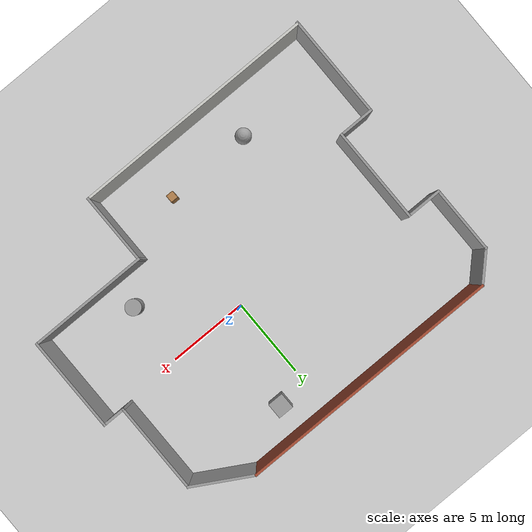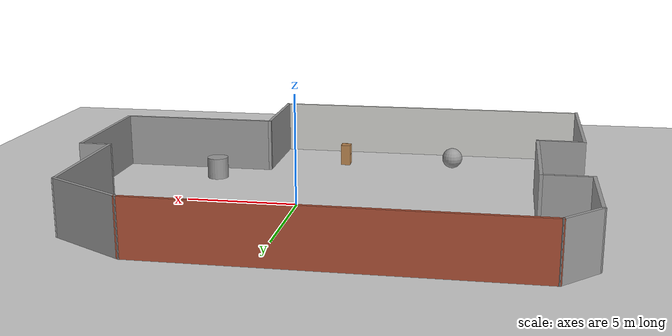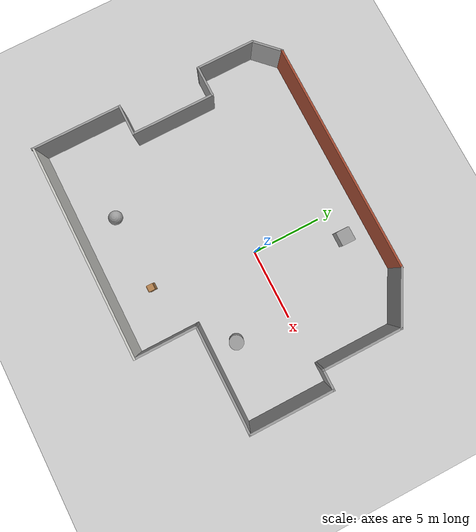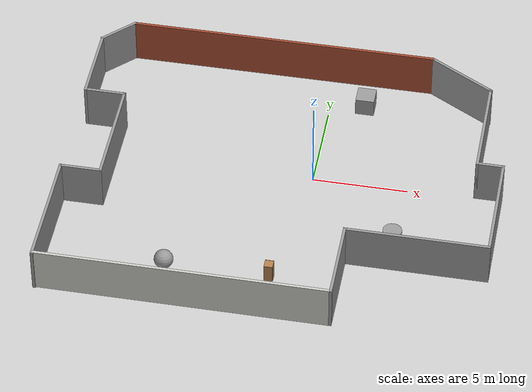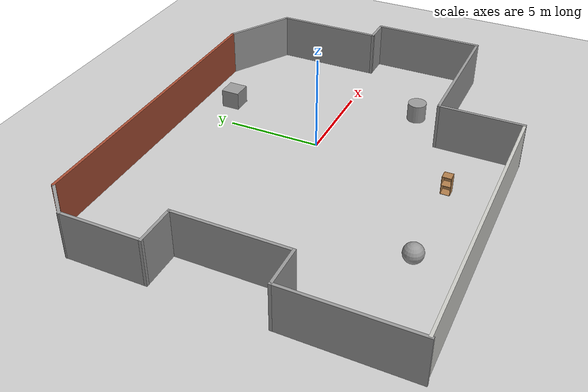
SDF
<sdf version="1.7">
 <world name="default">
  <light name="sun" type="directional">
   <pose>0 0 10 0 -0 0</pose>
   <diffuse>0.8 0.8 0.8 1</diffuse>
   <specular>0.2 0.2 0.2 1</specular>
   <attenuation>
    <range>1000</range>
    <constant>0.9</constant>
    <linear>0.01</linear>
    <quadratic>0.001</quadratic>
   </attenuation>
   <direction>-0.5 0.1 -0.9</direction>
   <spot><inner_angle>0</inner_angle><outer_angle>0</outer_angle><falloff>0</falloff></spot>
  </light>
  <model name="ground_plane">
   <static>1</static>
   <link name="link">
    <collision name="collision">
     <geometry><plane><normal>0 0 1</normal><size>100 100</size></plane></geometry>
     <surface>
      <contact><collide_bitmask>65535</collide_bitmask></contact>
      <friction><ode><mu>100</mu><mu2>50</mu2></ode></friction>
     </surface>
    </collision>
    <visual name="visual">
     <cast_shadows>0</cast_shadows>
     <geometry><plane><normal>0 0 1</normal><size>100 100</size></plane></geometry>
     <material>
      <script><uri>file://media/materials/scripts/gazebo.material</uri><name>Gazebo/Grey</name></script>
     </material>
    </visual>
   </link>
  </model>
  <gravity>0 0 -9.8</gravity>
  <magnetic_field>6e-06 2.3e-05 -4.2e-05</magnetic_field>
  <atmosphere type="adiabatic"/>
  <physics type="ode">
   <max_step_size>0.001</max_step_size>
   <real_time_factor>1</real_time_factor>
   <real_time_update_rate>1000</real_time_update_rate>
  </physics>
  <scene><ambient>0.4 0.4 0.4 1</ambient><background>0.7 0.7 0.7 1</background><shadows>1</shadows></scene>
  <spherical_coordinates>
   <surface_model>EARTH_WGS84</surface_model>
   <latitude_deg>0</latitude_deg>
   <longitude_deg>0</longitude_deg>
   <elevation>0</elevation>
   <heading_deg>0</heading_deg>
  </spherical_coordinates>
  <model name="new_world">
   <pose>-1.38713 -1.14003 0 0 -0 0</pose>
   <link name="Wall_20">
    <collision name="Wall_20_Collision">
     <geometry><box><size>6 0.15 2.5</size></box></geometry>
     <pose>0 0 1.25 0 -0 0</pose>
    </collision>
    <visual name="Wall_20_Visual">
     <pose>0 0 1.25 0 -0 0</pose>
     <geometry><box><size>6 0.15 2.5</size></box></geometry>
     <material>
      <script><uri>file://media/materials/scripts/gazebo.material</uri><name>Gazebo/Grey</name></script>
      <ambient>1 1 1 1</ambient>
     </material>
     <meta><layer>0</layer></meta>
    </visual>
    <pose>-9.14408 0.367002 0 0 -0 1.5708</pose>
   </link>
   <link name="Wall_21">
    <collision name="Wall_21_Collision">
     <geometry><box><size>2.25 0.15 2.5</size></box></geometry>
     <pose>0 0 1.25 0 -0 0</pose>
    </collision>
    <visual name="Wall_21_Visual">
     <pose>0 0 1.25 0 -0 0</pose>
     <geometry><box><size>2.25 0.15 2.5</size></box></geometry>
     <material>
      <script><uri>file://media/materials/scripts/gazebo.material</uri><name>Gazebo/Grey</name></script>
      <ambient>1 1 1 1</ambient>
     </material>
     <meta><layer>0</layer></meta>
    </visual>
    <pose>-10.1941 3.292 0 0 -0 3.14159</pose>
   </link>
   <link name="Wall_22">
    <collision name="Wall_22_Collision">
     <geometry><box><size>4.25 0.15 2.5</size></box></geometry>
     <pose>0 0 1.25 0 -0 0</pose>
    </collision>
    <visual name="Wall_22_Visual">
     <pose>0 0 1.25 0 -0 0</pose>
     <geometry><box><size>4.25 0.15 2.5</size></box></geometry>
     <material>
      <script><uri>file://media/materials/scripts/gazebo.material</uri><name>Gazebo/Grey</name></script>
      <ambient>1 1 1 1</ambient>
     </material>
     <meta><layer>0</layer></meta>
    </visual>
    <pose>-11.2441 5.342 0 0 -0 1.5708</pose>
   </link>
   <link name="Wall_23">
    <collision name="Wall_23_Collision">
     <geometry><box><size>2.25 0.15 2.5</size></box></geometry>
     <pose>0 0 1.25 0 -0 0</pose>
    </collision>
    <visual name="Wall_23_Visual">
     <pose>0 0 1.25 0 -0 0</pose>
     <geometry><box><size>2.25 0.15 2.5</size></box></geometry>
     <material>
      <script><uri>file://media/materials/scripts/gazebo.material</uri><name>Gazebo/Grey</name></script>
      <ambient>1 1 1 1</ambient>
     </material>
     <meta><layer>0</layer></meta>
    </visual>
    <pose>-10.5015 8.13452 0 0 -0 0.785338</pose>
   </link>
   <link name="Wall_24">
    <collision name="Wall_24_Collision">
     <geometry><box><size>16.5 0.15 2.5</size></box></geometry>
     <pose>0 0 1.25 0 -0 0</pose>
    </collision>
    <visual name="Wall_24_Visual">
     <pose>0 0 1.25 0 -0 0</pose>
     <geometry><box><size>16.5 0.15 2.5</size></box></geometry>
     <material>
      <script><uri>file://media/materials/scripts/gazebo.material</uri><name>Gazebo/Bricks</name></script>
      <ambient>1 1 1 1</ambient>
     </material>
     <meta><layer>0</layer></meta>
    </visual>
    <pose>-1.58387 8.87703 0 0 -0 0</pose>
   </link>
   <link name="Wall_25">
    <collision name="Wall_25_Collision">
     <geometry><box><size>4 0.15 2.5</size></box></geometry>
     <pose>0 0 1.25 0 -0 0</pose>
    </collision>
    <visual name="Wall_25_Visual">
     <pose>0 0 1.25 0 -0 0</pose>
     <geometry><box><size>4 0.15 2.5</size></box></geometry>
     <material>
      <script><uri>file://media/materials/scripts/gazebo.material</uri><name>Gazebo/Grey</name></script>
      <ambient>1 1 1 1</ambient>
     </material>
     <meta><layer>0</layer></meta>
    </visual>
    <pose>8.25809 7.91448 0 0 -0 -0.523658</pose>
   </link>
   <link name="Wall_26">
    <collision name="Wall_26_Collision">
     <geometry><box><size>5.75 0.15 2.5</size></box></geometry>
     <pose>0 0 1.25 0 -0 0</pose>
    </collision>
    <visual name="Wall_26_Visual">
     <pose>0 0 1.25 0 -0 0</pose>
     <geometry><box><size>5.75 0.15 2.5</size></box></geometry>
     <material>
      <script><uri>file://media/materials/scripts/gazebo.material</uri><name>Gazebo/Grey</name></script>
      <ambient>1 1 1 1</ambient>
     </material>
     <meta><layer>0</layer></meta>
    </visual>
    <pose>9.92505 4.15193 0 0 -0 -1.5708</pose>
   </link>
   <link name="Wall_27">
    <collision name="Wall_27_Collision">
     <geometry><box><size>1.5 0.15 2.5</size></box></geometry>
     <pose>0 0 1.25 0 -0 0</pose>
    </collision>
    <visual name="Wall_27_Visual">
     <pose>0 0 1.25 0 -0 0</pose>
     <geometry><box><size>1.5 0.15 2.5</size></box></geometry>
     <material>
      <script><uri>file://media/materials/scripts/gazebo.material</uri><name>Gazebo/Grey</name></script>
      <ambient>1 1 1 1</ambient>
     </material>
     <meta><layer>0</layer></meta>
    </visual>
    <pose>10.6 1.35193 0 0 -0 0</pose>
   </link>
   <link name="Wall_28">
    <collision name="Wall_28_Collision">
     <geometry><box><size>6 0.15 2.5</size></box></geometry>
     <pose>0 0 1.25 0 -0 0</pose>
    </collision>
    <visual name="Wall_28_Visual">
     <pose>0 0 1.25 0 -0 0</pose>
     <geometry><box><size>6 0.15 2.5</size></box></geometry>
     <material>
      <script><uri>file://media/materials/scripts/gazebo.material</uri><name>Gazebo/Grey</name></script>
      <ambient>1 1 1 1</ambient>
     </material>
     <meta><layer>0</layer></meta>
    </visual>
    <pose>11.275 -1.57307 0 0 -0 -1.5708</pose>
   </link>
   <link name="Wall_29">
    <collision name="Wall_29_Collision">
     <geometry><box><size>7.5 0.15 2.5</size></box></geometry>
     <pose>0 0 1.25 0 -0 0</pose>
    </collision>
    <visual name="Wall_29_Visual">
     <pose>0 0 1.25 0 -0 0</pose>
     <geometry><box><size>7.5 0.15 2.5</size></box></geometry>
     <material>
      <script><uri>file://media/materials/scripts/gazebo.material</uri><name>Gazebo/Grey</name></script>
      <ambient>1 1 1 1</ambient>
     </material>
     <meta><layer>0</layer></meta>
    </visual>
    <pose>7.60005 -4.49807 0 0 -0 3.14159</pose>
   </link>
   <link name="Wall_30">
    <collision name="Wall_30_Collision">
     <geometry><box><size>4.5 0.15 2.5</size></box></geometry>
     <pose>0 0 1.25 0 -0 0</pose>
    </collision>
    <visual name="Wall_30_Visual">
     <pose>0 0 1.25 0 -0 0</pose>
     <geometry><box><size>4.5 0.15 2.5</size></box></geometry>
     <material>
      <script><uri>file://media/materials/scripts/gazebo.material</uri><name>Gazebo/Grey</name></script>
      <ambient>1 1 1 1</ambient>
     </material>
     <meta><layer>0</layer></meta>
    </visual>
    <pose>3.92509 -6.67302 0 0 -0 -1.57078</pose>
   </link>
   <link name="Wall_31">
    <collision name="Wall_31_Collision">
     <geometry><box><size>15.25 0.15 2.5</size></box></geometry>
     <pose>0 0 1.25 0 -0 0</pose>
    </collision>
    <visual name="Wall_31_Visual">
     <pose>0 0 1.25 0 -0 0</pose>
     <geometry><box><size>15.25 0.15 2.5</size></box></geometry>
     <material>
      <script><uri>file://media/materials/scripts/gazebo.material</uri><name>Gazebo/CeilingTiled</name></script>
      <ambient>0.435294 0.796078 0.67451 1</ambient>
     </material>
     <meta><layer>0</layer></meta>
    </visual>
    <pose>-3.62487 -8.84797 0 0 -0 3.14159</pose>
   </link>
   <link name="Wall_35">
    <collision name="Wall_35_Collision">
     <geometry><box><size>2.25 0.15 2.5</size></box></geometry>
     <pose>0 0 1.25 0 -0 0</pose>
    </collision>
    <visual name="Wall_35_Visual">
     <pose>0 0 1.25 0 -0 0</pose>
     <geometry><box><size>2.25 0.15 2.5</size></box></geometry>
     <material>
      <script><uri>file://media/materials/scripts/gazebo.material</uri><name>Gazebo/Grey</name></script>
      <ambient>1 1 1 1</ambient>
     </material>
     <meta><layer>0</layer></meta>
    </visual>
    <pose>-10.1941 -2.558 0 0 -0 3.14159</pose>
   </link>
   <link name="Wall_38">
    <collision name="Wall_38_Collision">
     <geometry><box><size>6.5 0.15 2.5</size></box></geometry>
     <pose>0 0 1.25 0 -0 0</pose>
    </collision>
    <visual name="Wall_38_Visual">
     <pose>0 0 1.25 0 -0 0</pose>
     <geometry><box><size>6.5 0.15 2.5</size></box></geometry>
     <material>
      <script><uri>file://media/materials/scripts/gazebo.material</uri><name>Gazebo/Grey</name></script>
      <ambient>1 1 1 1</ambient>
     </material>
     <meta><layer>0</layer></meta>
    </visual>
    <pose>-11.2441 -5.733 0 0 -0 -1.5708</pose>
   </link>
   <static>1</static>
  </model>
  <model name="unit_sphere">
   <pose>-6.46664 -7.46206 0.5 0 -0 0</pose>
   <link name="link">
    <inertial>
     <mass>1</mass>
     <inertia><ixx>0.1</ixx><ixy>0</ixy><ixz>0</ixz><iyy>0.1</iyy><iyz>0</iyz><izz>0.1</izz></inertia>
    </inertial>
    <collision name="collision"><geometry><sphere><radius>0.5</radius></sphere></geometry></collision>
    <visual name="visual">
     <geometry><sphere><radius>0.5</radius></sphere></geometry>
     <material>
      <script><name>Gazebo/Grey</name><uri>file://media/materials/scripts/gazebo.material</uri></script>
     </material>
    </visual>
   </link>
  </model>
  <model name="unit_box">
   <pose>1.87943 5.89641 0.499995 0 1e-05 0</pose>
   <link name="link">
    <inertial>
     <mass>1</mass>
     <inertia>
      <ixx>0.166667</ixx>
      <ixy>0</ixy>
      <ixz>0</ixz>
      <iyy>0.166667</iyy>
      <iyz>0</iyz>
      <izz>0.166667</izz>
     </inertia>
    </inertial>
    <collision name="collision"><geometry><box><size>1 1 1</size></box></geometry></collision>
    <visual name="visual">
     <geometry><box><size>1 1 1</size></box></geometry>
     <material>
      <script><name>Gazebo/Grey</name><uri>file://media/materials/scripts/gazebo.material</uri></script>
     </material>
    </visual>
   </link>
  </model>
  <model name="unit_cylinder">
   <pose>4.75389 -3.89107 0.499993 -3e-06 -4e-06 -0</pose>
   <link name="link">
    <inertial>
     <mass>1</mass>
     <inertia><ixx>0.145833</ixx><ixy>0</ixy><ixz>0</ixz><iyy>0.145833</iyy><iyz>0</iyz><izz>0.125</izz></inertia>
    </inertial>
    <collision name="collision">
     <geometry><cylinder><radius>0.5</radius><length>1</length></cylinder></geometry>
    </collision>
    <visual name="visual">
     <geometry><cylinder><radius>0.5</radius><length>1</length></cylinder></geometry>
     <material>
      <script><name>Gazebo/Grey</name><uri>file://media/materials/scripts/gazebo.material</uri></script>
     </material>
    </visual>
   </link>
  </model>
  <model name="cabinet">
   <static>1</static>
   <link name="cabinet_bottom_plate">
    <inertial>
     <pose>0 0 -1 0 -0 0</pose>
     <inertia><ixx>2.05</ixx><ixy>0</ixy><ixz>0</ixz><iyy>2.05</iyy><iyz>0</iyz><izz>2.05</izz></inertia>
     <mass>25</mass>
    </inertial>
    <collision name="cabinet_bottom_plate_geom">
     <pose>0 0 0.01 0 -0 0</pose>
     <geometry><box><size>0.45 0.45 0.02</size></box></geometry>
    </collision>
    <visual name="cabinet_bottom_plate_geom_visual">
     <pose>0 0 0.01 0 -0 0</pose>
     <geometry><box><size>0.45 0.45 0.02</size></box></geometry>
     <material>
      <script><uri>file://media/materials/scripts/gazebo.material</uri><name>Gazebo/Wood</name></script>
     </material>
    </visual>
    <collision name="cabinet_bottom_plate_geom_cabinet_back_plate">
     <pose>0.235 0 0.51 0 -0 0</pose>
     <geometry><box><size>0.02 0.45 1.02</size></box></geometry>
    </collision>
    <visual name="cabinet_bottom_plate_geom_cabinet_back_plate_visual">
     <pose>0.235 0 0.51 0 -0 0</pose>
     <geometry><box><size>0.02 0.45 1.02</size></box></geometry>
     <material>
      <script><uri>file://media/materials/scripts/gazebo.material</uri><name>Gazebo/Wood</name></script>
     </material>
    </visual>
    <collision name="cabinet_bottom_plate_geom_cabinet_left_plate">
     <pose>0 0.235 0.51 0 -0 0</pose>
     <geometry><box><size>0.45 0.02 1.02</size></box></geometry>
    </collision>
    <visual name="cabinet_bottom_plate_geom_cabinet_left_plate_visual">
     <pose>0 0.235 0.51 0 -0 0</pose>
     <geometry><box><size>0.45 0.02 1.02</size></box></geometry>
     <material>
      <script><uri>file://media/materials/scripts/gazebo.material</uri><name>Gazebo/Wood</name></script>
     </material>
    </visual>
    <collision name="cabinet_bottom_plate_geom_cabinet_middle_plate">
     <pose>0 0 0.51 0 -0 0</pose>
     <geometry><box><size>0.45 0.45 0.02</size></box></geometry>
    </collision>
    <visual name="cabinet_bottom_plate_geom_cabinet_middle_plate_visual">
     <pose>0 0 0.51 0 -0 0</pose>
     <geometry><box><size>0.45 0.45 0.02</size></box></geometry>
     <material>
      <script><uri>file://media/materials/scripts/gazebo.material</uri><name>Gazebo/Wood</name></script>
     </material>
    </visual>
    <collision name="cabinet_bottom_plate_geom_cabinet_right_plate">
     <pose>0 -0.235 0.51 0 -0 0</pose>
     <geometry><box><size>0.45 0.02 1.02</size></box></geometry>
    </collision>
    <visual name="cabinet_bottom_plate_geom_cabinet_right_plate_visual">
     <pose>0 -0.235 0.51 0 -0 0</pose>
     <geometry><box><size>0.45 0.02 1.02</size></box></geometry>
     <material>
      <script><uri>file://media/materials/scripts/gazebo.material</uri><name>Gazebo/Wood</name></script>
     </material>
    </visual>
    <collision name="cabinet_bottom_plate_geom_cabinet_top_plate">
     <pose>0 0 1.01 0 -0 0</pose>
     <geometry><box><size>0.45 0.45 0.02</size></box></geometry>
    </collision>
    <visual name="cabinet_bottom_plate_geom_cabinet_top_plate_visual">
     <pose>0 0 1.01 0 -0 0</pose>
     <geometry><box><size>0.45 0.45 0.02</size></box></geometry>
     <material>
      <script><uri>file://media/materials/scripts/gazebo.material</uri><name>Gazebo/Wood</name></script>
     </material>
    </visual>
   </link>
   <pose>-1.05012 -7.3413 0 0 -0 0</pose>
  </model>
 </world>
</sdf>
